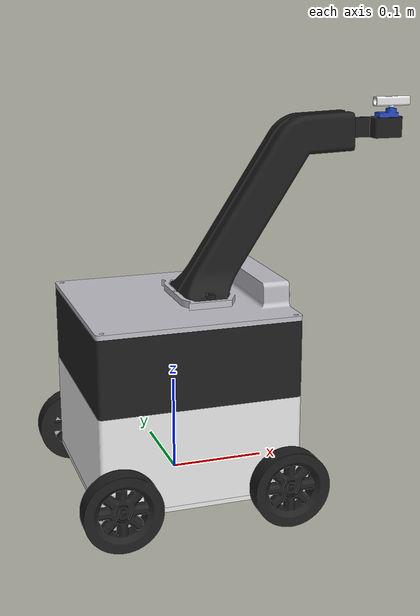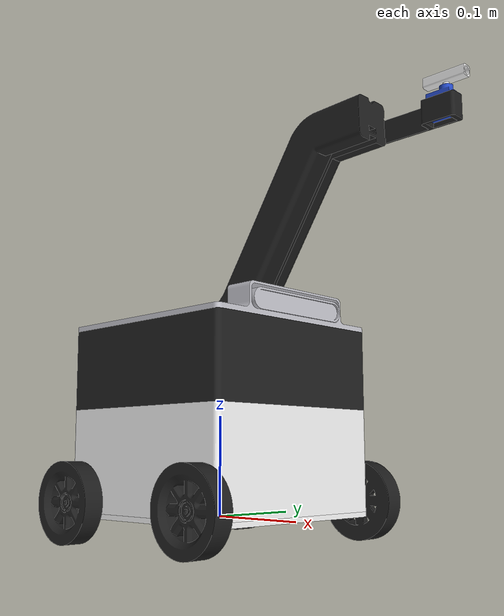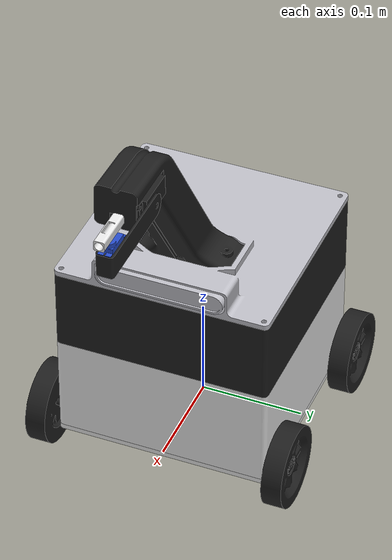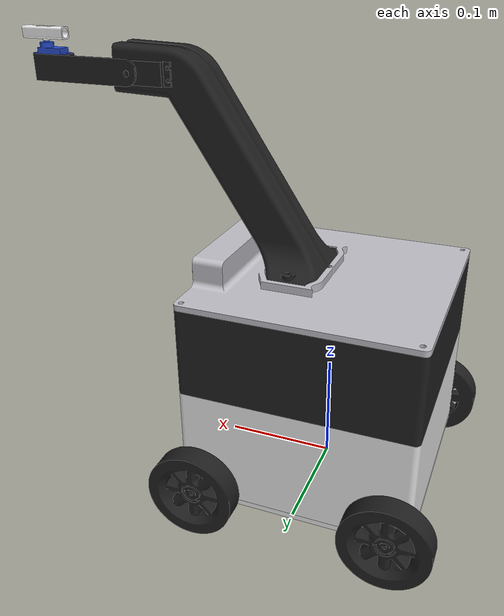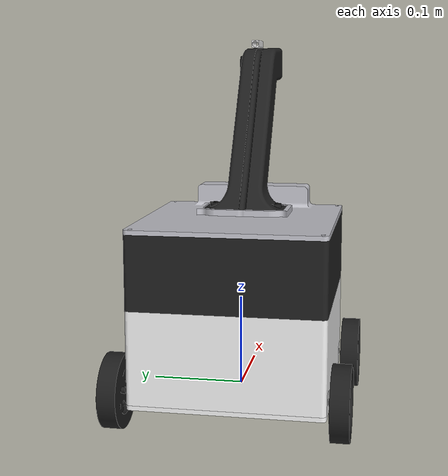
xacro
<?xml version="1.0" ?>
<robot name="agribot" xmlns:xacro="http://www.ros.org/wiki/xacro">

  <xacro:include filename="$(find agribot_description)/urdf/materials.xacro" />
  <xacro:arg name="use_ros2_control" default="true" />
  <xacro:if value="$(arg use_ros2_control)">
    <xacro:include filename="$(find agribot_description)/urdf/ros2_control.xacro" />
  </xacro:if>
  <xacro:unless value="$(arg use_ros2_control)">
    <xacro:include filename="$(find agribot_description)/urdf/agribot.gazebo" />
    <xacro:include filename="$(find agribot_description)/urdf/ros2_control_arm.xacro" />
  </xacro:unless>

  <link name="base_link">
    <inertial>
      <origin xyz="-4.570473462641842e-16 3.974324750123341e-17 0.0029938227998561446" rpy="0 0 0"/>
      <mass value="1.7964141980838164"/>
      <inertia ixx="0.006889" iyy="0.007081" izz="0.013935" ixy="0.0" iyz="0.0" ixz="-0.0"/>
    </inertial>
    <visual>
      <origin xyz="0 0 0" rpy="0 0 0"/>
      <geometry>
        <mesh filename="file://$(find agribot_description)/meshes/base_link.stl" scale="0.001 0.001 0.001"/>
      </geometry>
      <material name="white"/>
    </visual>
    <collision>
      <origin xyz="0 0 0" rpy="0 0 0"/>
      <geometry>
        <mesh filename="file://$(find agribot_description)/meshes/base_link.stl" scale="0.001 0.001 0.001"/>
      </geometry>
    </collision>
  </link>

  <link name="left_wheel_f_1">
    <inertial>
      <origin xyz="0.02376527039338165 -3.8897518706004774e-08 -5.638307915868668e-08" rpy="0 0 0"/>
      <mass value="1.9752071381070855"/>
      <inertia ixx="0.00249" iyy="0.00148" izz="0.00148" ixy="0.0" iyz="0.0" ixz="-0.0"/>
    </inertial>
    <visual>
      <origin xyz="-0.105 0.0875 -0.0151" rpy="0 0 0"/>
      <geometry>
        <mesh filename="file://$(find agribot_description)/meshes/left_wheel_f_1.stl" scale="0.001 0.001 0.001"/>
      </geometry>
      <material name="black"/>
    </visual>
    <collision>
      <origin xyz="-0.105 0.0875 -0.0151" rpy="0 0 0"/>
      <geometry>
        <mesh filename="file://$(find agribot_description)/meshes/left_wheel_f_1.stl" scale="0.001 0.001 0.001"/>
      </geometry>
    </collision>
  </link>

  <link name="left_wheel_r_1">
    <inertial>
      <origin xyz="0.023765237567969874 3.5211994281469927e-07 2.920154806001357e-07" rpy="0 0 0"/>
      <mass value="1.9752407759283448"/>
      <inertia ixx="0.00249" iyy="0.00148" izz="0.00148" ixy="-0.0" iyz="-0.0" ixz="0.0"/>
    </inertial>
    <visual>
      <origin xyz="-0.105 -0.0875 -0.0151" rpy="0 0 0"/>
      <geometry>
        <mesh filename="file://$(find agribot_description)/meshes/left_wheel_r_1.stl" scale="0.001 0.001 0.001"/>
      </geometry>
      <material name="black"/>
    </visual>
    <collision>
      <origin xyz="-0.105 -0.0875 -0.0151" rpy="0 0 0"/>
      <geometry>
        <mesh filename="file://$(find agribot_description)/meshes/left_wheel_r_1.stl" scale="0.001 0.001 0.001"/>
      </geometry>
    </collision>
  </link>

  <link name="right_wheel_f_1">
    <inertial>
      <origin xyz="-0.023765264575724546 -3.174121676191577e-07 2.2859849397628695e-07" rpy="0 0 0"/>
      <mass value="1.9752318719085256"/>
      <inertia ixx="0.00249" iyy="0.00148" izz="0.00148" ixy="-0.0" iyz="0.0" ixz="0.0"/>
    </inertial>
    <visual>
      <origin xyz="0.105 0.0875 -0.0151" rpy="0 0 0"/>
      <geometry>
        <mesh filename="file://$(find agribot_description)/meshes/right_wheel_f_1.stl" scale="0.001 0.001 0.001"/>
      </geometry>
      <material name="black"/>
    </visual>
    <collision>
      <origin xyz="0.105 0.0875 -0.0151" rpy="0 0 0"/>
      <geometry>
        <mesh filename="file://$(find agribot_description)/meshes/right_wheel_f_1.stl" scale="0.001 0.001 0.001"/>
      </geometry>
    </collision>
  </link>

  <link name="right_wheel_r_1">
    <inertial>
      <origin xyz="-0.023765256730971976 3.401843184924758e-08 -1.8363963493958635e-08" rpy="0 0 0"/>
      <mass value="1.9752094282360617"/>
      <inertia ixx="0.00249" iyy="0.00148" izz="0.00148" ixy="0.0" iyz="-0.0" ixz="-0.0"/>
    </inertial>
    <visual>
      <origin xyz="0.105 -0.0875 -0.0151" rpy="0 0 0"/>
      <geometry>
        <mesh filename="file://$(find agribot_description)/meshes/right_wheel_r_1.stl" scale="0.001 0.001 0.001"/>
      </geometry>
      <material name="black"/>
    </visual>
    <collision>
      <origin xyz="0.105 -0.0875 -0.0151" rpy="0 0 0"/>
      <geometry>
        <mesh filename="file://$(find agribot_description)/meshes/right_wheel_r_1.stl" scale="0.001 0.001 0.001"/>
      </geometry>
    </collision>
  </link>

  <link name="nozzle_connector_1">
    <inertial>
      <origin xyz="2.229432417673663e-05 -3.3452692023150377e-06 0.006154461918206566" rpy="0 0 0"/>
      <mass value="0.013452120517327887"/>
      <inertia ixx="2e-06" iyy="0.0" izz="2e-06" ixy="-0.0" iyz="0.0" ixz="-0.0"/>
    </inertial>
    <visual>
      <origin xyz="-0.021819 0.257334 -0.37843" rpy="0 0 0"/>
      <geometry>
        <mesh filename="file://$(find agribot_description)/meshes/nozzle_connector_1.stl" scale="0.001 0.001 0.001"/>
      </geometry>
      <material name="white"/>
    </visual>
    <collision>
      <origin xyz="-0.021819 0.257334 -0.37843" rpy="0 0 0"/>
      <geometry>
        <mesh filename="file://$(find agribot_description)/meshes/nozzle_connector_1.stl" scale="0.001 0.001 0.001"/>
      </geometry>
    </collision>
  </link>

  <link name="nozzle_link_1">
    <inertial>
      <origin xyz="-0.0037119566935994025 -0.05899380692825354 0.0005869088260455069" rpy="0 0 0"/>
      <mass value="0.06520098326267465"/>
      <inertia ixx="5.2e-05" iyy="5e-06" izz="5.2e-05" ixy="-5e-06" iyz="-0.0" ixz="-0.0"/>
    </inertial>
    <visual>
      <origin xyz="-0.028 0.175868 -0.356354" rpy="0 0 0"/>
      <geometry>
        <mesh filename="file://$(find agribot_description)/meshes/nozzle_link_1.stl" scale="0.001 0.001 0.001"/>
      </geometry>
      <material name="black"/>
    </visual>
    <collision>
      <origin xyz="-0.028 0.175868 -0.356354" rpy="0 0 0"/>
      <geometry>
        <mesh filename="file://$(find agribot_description)/meshes/nozzle_link_1.stl" scale="0.001 0.001 0.001"/>
      </geometry>
    </collision>
  </link>

  <link name="base_compartment_1">
    <inertial>
      <origin xyz="-0.0003547526649699371 0.09542747953074568 0.0686462412523709" rpy="0 0 0"/>
      <mass value="3.301369814185908"/>
      <inertia ixx="0.022156" iyy="0.021933" izz="0.036776" ixy="-9.8e-05" iyz="-4.3e-05" ixz="3.6e-05"/>
    </inertial>
    <visual>
      <origin xyz="-0.0 0.095 -0.005" rpy="0 0 0"/>
      <geometry>
        <mesh filename="file://$(find agribot_description)/meshes/base_compartment_1.stl" scale="0.001 0.001 0.001"/>
      </geometry>
      <material name="white"/>
    </visual>
    <collision>
      <origin xyz="-0.0 0.095 -0.005" rpy="0 0 0"/>
      <geometry>
        <mesh filename="file://$(find agribot_description)/meshes/base_compartment_1.stl" scale="0.001 0.001 0.001"/>
      </geometry>
    </collision>
  </link>

  <link name="fertilizer_compartment_1">
    <inertial>
      <origin xyz="0.0003555238034071677 -0.005319220645384211 0.023494605554919737" rpy="0 0 0"/>
      <mass value="3.6246367655931295"/>
      <inertia ixx="0.020461" iyy="0.020882" izz="0.036607" ixy="3.5e-05" iyz="0.000348" ixz="-5.1e-05"/>
    </inertial>
    <visual>
      <origin xyz="-0.0 -0.0 -0.106" rpy="0 0 0"/>
      <geometry>
        <mesh filename="file://$(find agribot_description)/meshes/fertilizer_compartment_1.stl" scale="0.001 0.001 0.001"/>
      </geometry>
      <material name="black"/>
    </visual>
    <collision>
      <origin xyz="-0.0 -0.0 -0.106" rpy="0 0 0"/>
      <geometry>
        <mesh filename="file://$(find agribot_description)/meshes/fertilizer_compartment_1.stl" scale="0.001 0.001 0.001"/>
      </geometry>
    </collision>
  </link>

  <link name="camera_link">
    <inertial>
      <origin xyz="-3.4264217332472056e-07 0.0007649174414454812 0.010000000000000037" rpy="0 0 0"/>
      <mass value="0.4593664337614406"/>
      <inertia ixx="3.8e-05" iyy="0.000568" izz="0.000576" ixy="-0.0" iyz="0.0" ixz="0.0"/>
    </inertial>
    <visual>
      <origin xyz="-0.09 0.0 -0.191" rpy="0 0 ${pi/2}"/>
      <geometry>
        <mesh filename="file://$(find agribot_description)/meshes/depth_frame_1.stl" scale="0.001 0.001 0.001"/>
      </geometry>
      <material name="silver"/>
    </visual>
    <collision>
      <origin xyz="-0.09 0.0 -0.191" rpy="0 0 0"/>
      <geometry>
        <mesh filename="file://$(find agribot_description)/meshes/depth_frame_1.stl" scale="0.001 0.001 0.001"/>
      </geometry>
    </collision>
  </link>

  <joint name="camera_optical_joint" type="fixed">
        <parent link="camera_link"/>
        <child link="camera_color_frame"/>
        <origin xyz="0 0 0.01" rpy="${-pi/2} 0 ${-pi/2}"/>
    </joint>

  <link name="camera_color_frame"></link>

  <link name="sprayer_arm_1">
    <inertial>
      <origin xyz="-0.035342445695911016 -0.06019671400621267 0.09194848786880899" rpy="0 0 0"/>
      <mass value="3.074193701644045"/>
      <inertia ixx="0.016682" iyy="0.010749" izz="0.007067" ixy="-8e-05" iyz="0.007521" ixz="7.8e-05"/>
    </inertial>
    <visual>
      <origin xyz="-0.035 0.03 -0.191" rpy="0 0 0"/>
      <geometry>
        <mesh filename="file://$(find agribot_description)/meshes/sprayer_arm_1.stl" scale="0.001 0.001 0.001"/>
      </geometry>
      <material name="black"/>
    </visual>
    <collision>
      <origin xyz="-0.035 0.03 -0.191" rpy="0 0 0"/>
      <geometry>
        <mesh filename="file://$(find agribot_description)/meshes/sprayer_arm_1.stl" scale="0.001 0.001 0.001"/>
      </geometry>
    </collision>
  </link>

  <link name="mg995servo_motor_1">
    <inertial>
      <origin xyz="-0.009805478479577946 -0.023903766658130654 -0.004989424986118651" rpy="0 0 0"/>
      <mass value="0.20441772207412004"/>
      <inertia ixx="3.5e-05" iyy="2.4e-05" izz="4.6e-05" ixy="0.0" iyz="-0.0" ixz="-0.0"/>
    </inertial>
    <visual>
      <origin xyz="-0.019 0.142181 -0.361354" rpy="0 0 0"/>
      <geometry>
        <mesh filename="file://$(find agribot_description)/meshes/mg995servo_motor_1.stl" scale="0.001 0.001 0.001"/>
      </geometry>
      <material name="black"/>
    </visual>
    <collision>
      <origin xyz="-0.019 0.142181 -0.361354" rpy="0 0 0"/>
      <geometry>
        <mesh filename="file://$(find agribot_description)/meshes/mg995servo_motor_1.stl" scale="0.001 0.001 0.001"/>
      </geometry>
    </collision>
  </link>

  <link name="sg90servo_motor_1">
    <inertial>
      <origin xyz="2.152251246390069e-07 -0.014295753567811792 -0.005316127072070631" rpy="0 0 0"/>
      <mass value="0.05310535022222927"/>
      <inertia ixx="5e-06" iyy="3e-06" izz="3e-06" ixy="-0.0" iyz="0.0" ixz="0.0"/>
    </inertial>
    <visual>
      <origin xyz="-0.021819 0.237934 -0.36795" rpy="0 0 0"/>
      <geometry>
        <mesh filename="file://$(find agribot_description)/meshes/sg90servo_motor_1.stl" scale="0.001 0.001 0.001"/>
      </geometry>
      <material name="blue"/>
    </visual>
    <collision>
      <origin xyz="-0.021819 0.237934 -0.36795" rpy="0 0 0"/>
      <geometry>
        <mesh filename="file://$(find agribot_description)/meshes/sg90servo_motor_1.stl" scale="0.001 0.001 0.001"/>
      </geometry>
    </collision>
  </link>

  <link name="sprayer_arm_base_1">
    <inertial>
      <origin xyz="0.09886174882456769 0.09188290801943581 0.004064283280727499" rpy="0 0 0"/>
      <mass value="1.9345393916690379"/>
      <inertia ixx="0.007397" iyy="0.006748" izz="0.014026" ixy="-2.3e-05" iyz="0.000217" ixz="1e-06"/>
    </inertial>
    <visual>
      <origin xyz="0.099 0.099 -0.186" rpy="0 0 0"/>
      <geometry>
        <mesh filename="file://$(find agribot_description)/meshes/sprayer_arm_base_1.stl" scale="0.001 0.001 0.001"/>
      </geometry>
      <material name="silver"/>
    </visual>
    <collision>
      <origin xyz="0.099 0.099 -0.186" rpy="0 0 0"/>
      <geometry>
        <mesh filename="file://$(find agribot_description)/meshes/sprayer_arm_base_1.stl" scale="0.001 0.001 0.001"/>
      </geometry>
    </collision>
  </link>
  <link name="base_footprint"/>
  <joint name="base_footprint_joint" type="fixed">
    <parent link="base_footprint"/>
    <child link="base_link"/>
    <origin xyz="0 0 0" rpy="0 0 ${pi/2}"/>
  </joint>
  <joint name="Revolute_6" type="continuous">
    <origin xyz="0.105 -0.0875 0.0151" rpy="0 0 0"/>
    <parent link="base_link"/>
    <child link="left_wheel_f_1"/>
    <axis xyz="1.0 0.0 0.0"/>
  </joint>

  <joint name="Revolute_7" type="continuous">
    <origin xyz="0.105 0.0875 0.0151" rpy="0 0 0"/>
    <parent link="base_link"/>
    <child link="left_wheel_r_1"/>
    <axis xyz="1.0 0.0 0.0"/>
  </joint>

  <joint name="Revolute_8" type="continuous">
    <origin xyz="-0.105 -0.0875 0.0151" rpy="0 0 0"/>
    <parent link="base_link"/>
    <child link="right_wheel_f_1"/>
    <axis xyz="1.0 0.0 0.0"/>
  </joint>

  <joint name="Revolute_9" type="continuous">
    <origin xyz="-0.105 0.0875 0.0151" rpy="0 0 0"/>
    <parent link="base_link"/>
    <child link="right_wheel_r_1"/>
    <axis xyz="1.0 0.0 0.0"/>
  </joint>

  <joint name="Revolute 11" type="continuous">
    <origin xyz="0.0 -0.0194 0.01048" rpy="0 0 0"/>
    <parent link="sg90servo_motor_1"/>
    <child link="nozzle_connector_1"/>
    <axis xyz="0.0 0.0 1.0"/>
  </joint>

  <joint name="Revolute 13" type="continuous">
    <origin xyz="0.009 -0.033687 -0.005" rpy="0 0 0"/>
    <parent link="mg995servo_motor_1"/>
    <child link="nozzle_link_1"/>
    <axis xyz="1.0 0.0 0.0"/>
  </joint>

  <joint name="Rigid 37" type="fixed">
    <origin xyz="0.0 -0.095 0.005" rpy="0 0 0"/>
    <parent link="base_link"/>
    <child link="base_compartment_1"/>
  </joint>

  <joint name="Rigid 38" type="fixed">
    <origin xyz="0.0 0.095 0.101" rpy="0 0 0"/>
    <parent link="base_compartment_1"/>
    <child link="fertilizer_compartment_1"/>
  </joint>

  <joint name="Rigid 40" type="fixed">
    <origin xyz="0.099094 0.007 0.005" rpy="0 0 ${-pi/2}"/>
    <parent link="sprayer_arm_base_1"/>
    <child link="camera_link"/>
  </joint>

  <joint name="Rigid 41" type="fixed">
    <origin xyz="0.134 0.069 0.005" rpy="0 0 0"/>
    <parent link="sprayer_arm_base_1"/>
    <child link="sprayer_arm_1"/>
  </joint>

  <joint name="Rigid 42" type="fixed">
    <origin xyz="-0.016 -0.112181 0.170354" rpy="0 0 0"/>
    <parent link="sprayer_arm_1"/>
    <child link="mg995servo_motor_1"/>
  </joint>

  <joint name="Rigid 43" type="fixed">
    <origin xyz="-0.006181 -0.062066 0.011596" rpy="0 0 0"/>
    <parent link="nozzle_link_1"/>
    <child link="sg90servo_motor_1"/>
  </joint>

  <joint name="Rigid 44" type="fixed">
    <origin xyz="-0.099 -0.099 0.08" rpy="0 0 0"/>
    <parent link="fertilizer_compartment_1"/>
    <child link="sprayer_arm_base_1"/>
  </joint>

</robot>
